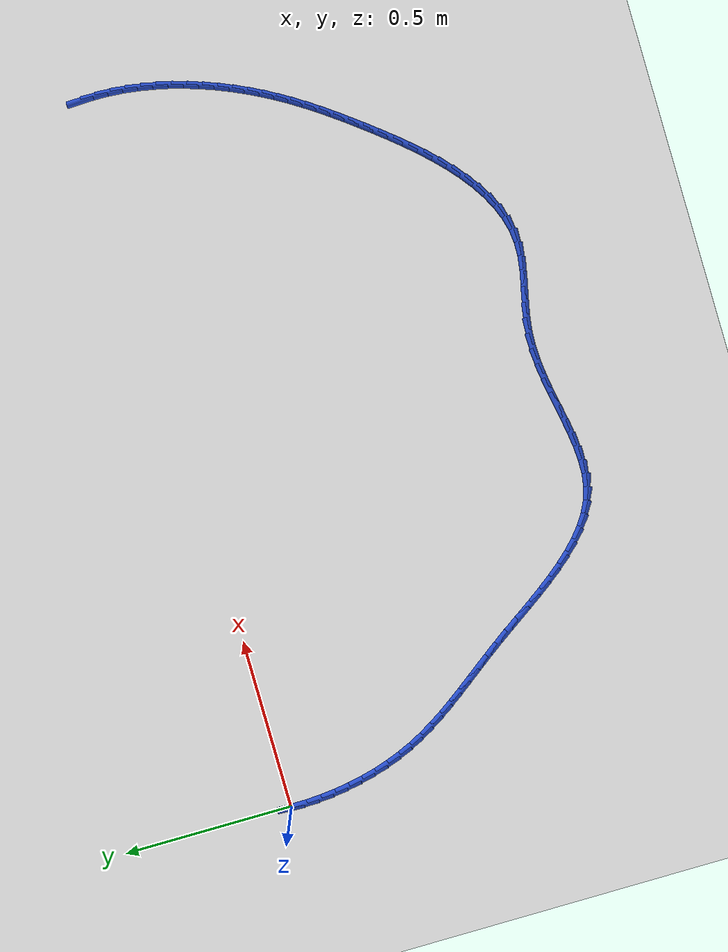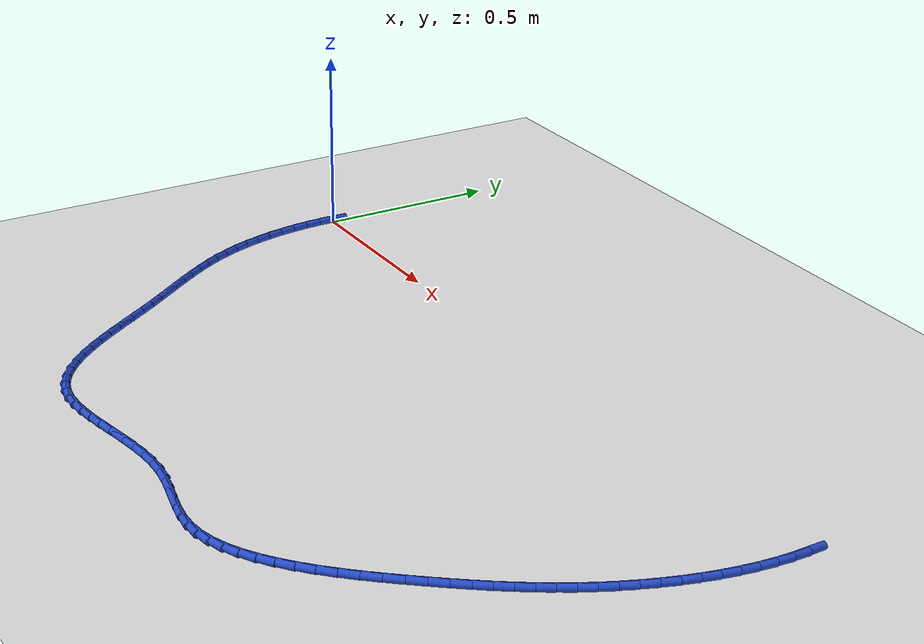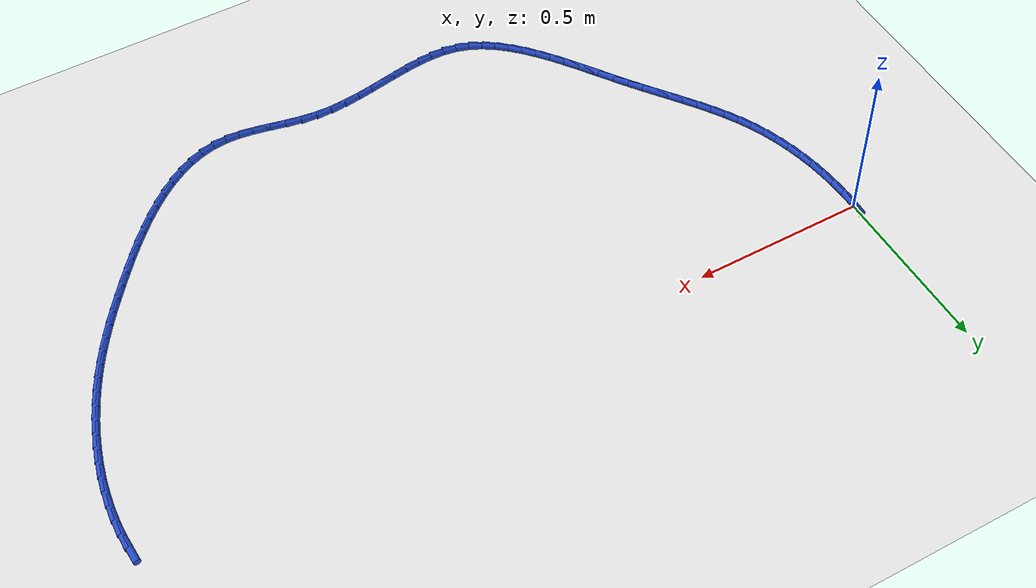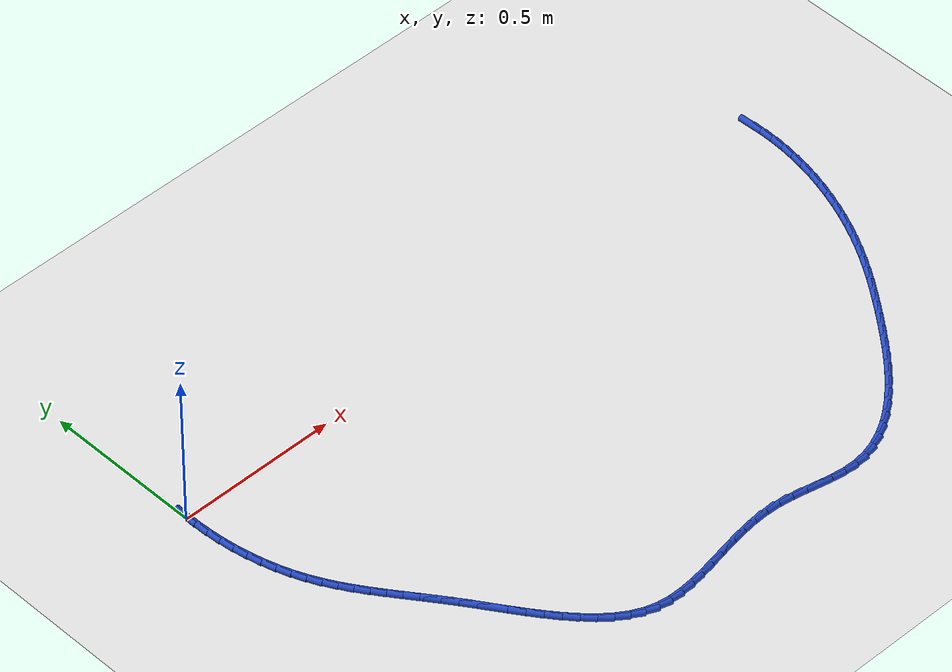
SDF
<sdf version="1.6">
 <world name="default">
  <model name="ground_plane">
   <static>1</static>
   <link name="link">
    <collision name="collision">
     <geometry><plane><normal>0 0 1</normal><size>100 100</size></plane></geometry>
     <surface><friction><ode><mu>100</mu><mu2>50</mu2></ode></friction></surface>
    </collision>
    <visual name="visual">
     <cast_shadows>0</cast_shadows>
     <geometry><plane><normal>0 0 1</normal><size>100 100</size></plane></geometry>
     <material>
      <script><uri>file://media/materials/scripts/gazebo.material</uri><name>Gazebo/WhiteGlow</name></script>
     </material>
    </visual>
   </link>
  </model>
  <model name="line">
   <link name="link_0">
    <pose>3.9898639947466563e-17 2.7755575615628914e-17 0.01 0 1.57 1.5283468277416203</pose>
    <collision name="collision">
     <geometry><cylinder><radius>0.01</radius><length>0.08</length></cylinder></geometry>
    </collision>
    <visual name="visual">
     <material>
      <script><name>Gazebo/Blue</name><uri>file://media/materials/scripts/gazebo.material</uri></script>
     </material>
     <geometry><cylinder><radius>0.01</radius><length>0.08</length></cylinder></geometry>
    </visual>
   </link>
   <link name="link_81">
    <pose>2.1385762341780024 0.02241132161755945 0.01 0 1.57 -1.5367360990285168</pose>
    <collision name="collision">
     <geometry><cylinder><radius>0.01</radius><length>0.08</length></cylinder></geometry>
    </collision>
    <visual name="visual">
     <material>
      <script><name>Gazebo/Blue</name><uri>file://media/materials/scripts/gazebo.material</uri></script>
     </material>
     <geometry><cylinder><radius>0.01</radius><length>0.08</length></cylinder></geometry>
    </visual>
   </link>
   <link name="link_82">
    <pose>2.140056562389448 -0.02103394641865927 0.01 0 1.57 1.5454995120149058</pose>
    <collision name="collision">
     <geometry><cylinder><radius>0.01</radius><length>0.08</length></cylinder></geometry>
    </collision>
    <visual name="visual">
     <material>
      <script><name>Gazebo/Blue</name><uri>file://media/materials/scripts/gazebo.material</uri></script>
     </material>
     <geometry><cylinder><radius>0.01</radius><length>0.08</length></cylinder></geometry>
    </visual>
   </link>
   <link name="link_83">
    <pose>2.138948853689419 -0.06481307097114308 0.01 0 1.57 1.490041009162373</pose>
    <collision name="collision">
     <geometry><cylinder><radius>0.01</radius><length>0.08</length></cylinder></geometry>
    </collision>
    <visual name="visual">
     <material>
      <script><name>Gazebo/Blue</name><uri>file://media/materials/scripts/gazebo.material</uri></script>
     </material>
     <geometry><cylinder><radius>0.01</radius><length>0.08</length></cylinder></geometry>
    </visual>
   </link>
   <link name="link_84">
    <pose>2.1353911505092515 -0.10877260403158467 0.01 0 1.57 1.4381378140270304</pose>
    <collision name="collision">
     <geometry><cylinder><radius>0.01</radius><length>0.08</length></cylinder></geometry>
    </collision>
    <visual name="visual">
     <material>
      <script><name>Gazebo/Blue</name><uri>file://media/materials/scripts/gazebo.material</uri></script>
     </material>
     <geometry><cylinder><radius>0.01</radius><length>0.08</length></cylinder></geometry>
    </visual>
   </link>
   <link name="link_85">
    <pose>2.129521495280283 -0.15275909759167597 0.01 0 1.57 1.3894200010257964</pose>
    <collision name="collision">
     <geometry><cylinder><radius>0.01</radius><length>0.08</length></cylinder></geometry>
    </collision>
    <visual name="visual">
     <material>
      <script><name>Gazebo/Blue</name><uri>file://media/materials/scripts/gazebo.material</uri></script>
     </material>
     <geometry><cylinder><radius>0.01</radius><length>0.08</length></cylinder></geometry>
    </visual>
   </link>
   <link name="link_86">
    <pose>2.12147793043385 -0.1966191036431089 0.01 0 1.57 1.343507507257233</pose>
    <collision name="collision">
     <geometry><cylinder><radius>0.01</radius><length>0.08</length></cylinder></geometry>
    </collision>
    <visual name="visual">
     <material>
      <script><name>Gazebo/Blue</name><uri>file://media/materials/scripts/gazebo.material</uri></script>
     </material>
     <geometry><cylinder><radius>0.01</radius><length>0.08</length></cylinder></geometry>
    </visual>
   </link>
   <link name="link_87">
    <pose>2.111398498401288 -0.24019917417757602 0.01 0 1.57 1.3000201977026942</pose>
    <collision name="collision">
     <geometry><cylinder><radius>0.01</radius><length>0.08</length></cylinder></geometry>
    </collision>
    <visual name="visual">
     <material>
      <script><name>Gazebo/Blue</name><uri>file://media/materials/scripts/gazebo.material</uri></script>
     </material>
     <geometry><cylinder><radius>0.01</radius><length>0.08</length></cylinder></geometry>
    </visual>
   </link>
   <link name="link_88">
    <pose>2.099421241613934 -0.28334586118676774 0.01 0 1.57 1.2585828224933822</pose>
    <collision name="collision">
     <geometry><cylinder><radius>0.01</radius><length>0.08</length></cylinder></geometry>
    </collision>
    <visual name="visual">
     <material>
      <script><name>Gazebo/Blue</name><uri>file://media/materials/scripts/gazebo.material</uri></script>
     </material>
     <geometry><cylinder><radius>0.01</radius><length>0.08</length></cylinder></geometry>
    </visual>
   </link>
   <link name="link_89">
    <pose>2.085684202503125 -0.325905716662377 0.01 0 1.57 1.2188260554733037</pose>
    <collision name="collision">
     <geometry><cylinder><radius>0.01</radius><length>0.08</length></cylinder></geometry>
    </collision>
    <visual name="visual">
     <material>
      <script><name>Gazebo/Blue</name><uri>file://media/materials/scripts/gazebo.material</uri></script>
     </material>
     <geometry><cylinder><radius>0.01</radius><length>0.08</length></cylinder></geometry>
    </visual>
   </link>
   <link name="link_90">
    <pose>2.070325423500197 -0.3677252925960953 0.01 0 1.57 1.1803845038735719</pose>
    <collision name="collision">
     <geometry><cylinder><radius>0.01</radius><length>0.08</length></cylinder></geometry>
    </collision>
    <visual name="visual">
     <material>
      <script><name>Gazebo/Blue</name><uri>file://media/materials/scripts/gazebo.material</uri></script>
     </material>
     <geometry><cylinder><radius>0.01</radius><length>0.08</length></cylinder></geometry>
    </visual>
   </link>
   <link name="link_91">
    <pose>2.053482947036486 -0.4086511409796147 0.01 0 1.57 1.1428922585203218</pose>
    <collision name="collision">
     <geometry><cylinder><radius>0.01</radius><length>0.08</length></cylinder></geometry>
    </collision>
    <visual name="visual">
     <material>
      <script><name>Gazebo/Blue</name><uri>file://media/materials/scripts/gazebo.material</uri></script>
     </material>
     <geometry><cylinder><radius>0.01</radius><length>0.08</length></cylinder></geometry>
    </visual>
   </link>
   <link name="link_92">
    <pose>2.035294815543329 -0.448529813804628 0.01 0 1.57 1.1060596783390448</pose>
    <collision name="collision">
     <geometry><cylinder><radius>0.01</radius><length>0.08</length></cylinder></geometry>
    </collision>
    <visual name="visual">
     <material>
      <script><name>Gazebo/Blue</name><uri>file://media/materials/scripts/gazebo.material</uri></script>
     </material>
     <geometry><cylinder><radius>0.01</radius><length>0.08</length></cylinder></geometry>
    </visual>
   </link>
   <link name="link_93">
    <pose>2.015889456905921 -0.48723509468058 0.01 0 1.57 1.0705007789508294</pose>
    <collision name="collision">
     <geometry><cylinder><radius>0.01</radius><length>0.08</length></cylinder></geometry>
    </collision>
    <visual name="visual">
     <material>
      <script><name>Gazebo/Blue</name><uri>file://media/materials/scripts/gazebo.material</uri></script>
     </material>
     <geometry><cylinder><radius>0.01</radius><length>0.08</length></cylinder></geometry>
    </visual>
   </link>
   <link name="link_94">
    <pose>1.9953132620136749 -0.524873123490219 0.01 0 1.57 1.037089655518106</pose>
    <collision name="collision">
     <geometry><cylinder><radius>0.01</radius><length>0.08</length></cylinder></geometry>
    </collision>
    <visual name="visual">
     <material>
      <script><name>Gazebo/Blue</name><uri>file://media/materials/scripts/gazebo.material</uri></script>
     </material>
     <geometry><cylinder><radius>0.01</radius><length>0.08</length></cylinder></geometry>
    </visual>
   </link>
   <link name="link_95">
    <pose>1.9735710687811283 -0.5616677320709373 0.01 0 1.57 1.0063798327476379</pose>
    <collision name="collision">
     <geometry><cylinder><radius>0.01</radius><length>0.08</length></cylinder></geometry>
    </collision>
    <visual name="visual">
     <material>
      <script><name>Gazebo/Blue</name><uri>file://media/materials/scripts/gazebo.material</uri></script>
     </material>
     <geometry><cylinder><radius>0.01</radius><length>0.08</length></cylinder></geometry>
    </visual>
   </link>
   <link name="link_96">
    <pose>1.9506673917016166 -0.5978436682973808 0.01 0 1.57 0.9788191739992435</pose>
    <collision name="collision">
     <geometry><cylinder><radius>0.01</radius><length>0.08</length></cylinder></geometry>
    </collision>
    <visual name="visual">
     <material>
      <script><name>Gazebo/Blue</name><uri>file://media/materials/scripts/gazebo.material</uri></script>
     </material>
     <geometry><cylinder><radius>0.01</radius><length>0.08</length></cylinder></geometry>
    </visual>
   </link>
   <link name="link_97">
    <pose>1.9266067452684816 -0.6336256800441937 0.01 0 1.57 0.9547360909347792</pose>
    <collision name="collision">
     <geometry><cylinder><radius>0.01</radius><length>0.08</length></cylinder></geometry>
    </collision>
    <visual name="visual">
     <material>
      <script><name>Gazebo/Blue</name><uri>file://media/materials/scripts/gazebo.material</uri></script>
     </material>
     <geometry><cylinder><radius>0.01</radius><length>0.08</length></cylinder></geometry>
    </visual>
   </link>
   <link name="link_98">
    <pose>1.9013936439750605 -0.6692385151860223 0.01 0 1.57 0.934334583449211</pose>
    <collision name="collision">
     <geometry><cylinder><radius>0.01</radius><length>0.08</length></cylinder></geometry>
    </collision>
    <visual name="visual">
     <material>
      <script><name>Gazebo/Blue</name><uri>file://media/materials/scripts/gazebo.material</uri></script>
     </material>
     <geometry><cylinder><radius>0.01</radius><length>0.08</length></cylinder></geometry>
    </visual>
   </link>
   <link name="link_99">
    <pose>1.8750326023146917 -0.7049069215975119 0.01 0 1.57 0.9176993403220279</pose>
    <collision name="collision">
     <geometry><cylinder><radius>0.01</radius><length>0.08</length></cylinder></geometry>
    </collision>
    <visual name="visual">
     <material>
      <script><name>Gazebo/Blue</name><uri>file://media/materials/scripts/gazebo.material</uri></script>
     </material>
     <geometry><cylinder><radius>0.01</radius><length>0.08</length></cylinder></geometry>
    </visual>
   </link>
   <link name="link_100">
    <pose>1.8475281347807133 -0.740855647153308 0.01 0 1.57 0.9044798266328412</pose>
    <collision name="collision">
     <geometry><cylinder><radius>0.01</radius><length>0.08</length></cylinder></geometry>
    </collision>
    <visual name="visual">
     <material>
      <script><name>Gazebo/Blue</name><uri>file://media/materials/scripts/gazebo.material</uri></script>
     </material>
     <geometry><cylinder><radius>0.01</radius><length>0.08</length></cylinder></geometry>
    </visual>
   </link>
   <link name="link_101">
    <pose>1.8188855009833285 -0.7772838616205846 0.01 0 1.57 0.8894356543483096</pose>
    <collision name="collision">
     <geometry><cylinder><radius>0.01</radius><length>0.08</length></cylinder></geometry>
    </collision>
    <visual name="visual">
     <material>
      <script><name>Gazebo/Blue</name><uri>file://media/materials/scripts/gazebo.material</uri></script>
     </material>
     <geometry><cylinder><radius>0.01</radius><length>0.08</length></cylinder></geometry>
    </visual>
   </link>
   <link name="link_102">
    <pose>1.7891216964506942 -0.8139878683373162 0.01 0 1.57 0.8683506349623945</pose>
    <collision name="collision">
     <geometry><cylinder><radius>0.01</radius><length>0.08</length></cylinder></geometry>
    </collision>
    <visual name="visual">
     <material>
      <script><name>Gazebo/Blue</name><uri>file://media/materials/scripts/gazebo.material</uri></script>
     </material>
     <geometry><cylinder><radius>0.01</radius><length>0.08</length></cylinder></geometry>
    </visual>
   </link>
   <link name="link_103">
    <pose>1.7582630608726735 -0.8504432075723085 0.01 0 1.57 0.8407622943882539</pose>
    <collision name="collision">
     <geometry><cylinder><radius>0.01</radius><length>0.08</length></cylinder></geometry>
    </collision>
    <visual name="visual">
     <material>
      <script><name>Gazebo/Blue</name><uri>file://media/materials/scripts/gazebo.material</uri></script>
     </material>
     <geometry><cylinder><radius>0.01</radius><length>0.08</length></cylinder></geometry>
    </visual>
   </link>
   <link name="link_104">
    <pose>1.7263361929028167 -0.8861165299808624 0.01 0 1.57 0.806032804837281</pose>
    <collision name="collision">
     <geometry><cylinder><radius>0.01</radius><length>0.08</length></cylinder></geometry>
    </collision>
    <visual name="visual">
     <material>
      <script><name>Gazebo/Blue</name><uri>file://media/materials/scripts/gazebo.material</uri></script>
     </material>
     <geometry><cylinder><radius>0.01</radius><length>0.08</length></cylinder></geometry>
    </visual>
   </link>
   <link name="link_105">
    <pose>1.6933676911946722 -0.9204744862182785 0.01 0 1.57 0.7632295218565668</pose>
    <collision name="collision">
     <geometry><cylinder><radius>0.01</radius><length>0.08</length></cylinder></geometry>
    </collision>
    <visual name="visual">
     <material>
      <script><name>Gazebo/Blue</name><uri>file://media/materials/scripts/gazebo.material</uri></script>
     </material>
     <geometry><cylinder><radius>0.01</radius><length>0.08</length></cylinder></geometry>
    </visual>
   </link>
   <link name="link_106">
    <pose>1.6593841544017898 -0.9529837269398588 0.01 0 1.57 0.7111132831733754</pose>
    <collision name="collision">
     <geometry><cylinder><radius>0.01</radius><length>0.08</length></cylinder></geometry>
    </collision>
    <visual name="visual">
     <material>
      <script><name>Gazebo/Blue</name><uri>file://media/materials/scripts/gazebo.material</uri></script>
     </material>
     <geometry><cylinder><radius>0.01</radius><length>0.08</length></cylinder></geometry>
    </visual>
   </link>
   <link name="link_107">
    <pose>1.6244121811777181 -0.9831109028009021 0.01 0 1.57 0.6481406067817213</pose>
    <collision name="collision">
     <geometry><cylinder><radius>0.01</radius><length>0.08</length></cylinder></geometry>
    </collision>
    <visual name="visual">
     <material>
      <script><name>Gazebo/Blue</name><uri>file://media/materials/scripts/gazebo.material</uri></script>
     </material>
     <geometry><cylinder><radius>0.01</radius><length>0.08</length></cylinder></geometry>
    </visual>
   </link>
   <link name="link_108">
    <pose>1.5884783701760066 -1.01032266445671 0.01 0 1.57 0.5725162226361502</pose>
    <collision name="collision">
     <geometry><cylinder><radius>0.01</radius><length>0.08</length></cylinder></geometry>
    </collision>
    <visual name="visual">
     <material>
      <script><name>Gazebo/Blue</name><uri>file://media/materials/scripts/gazebo.material</uri></script>
     </material>
     <geometry><cylinder><radius>0.01</radius><length>0.08</length></cylinder></geometry>
    </visual>
   </link>
   <link name="link_109">
    <pose>1.551609320050204 -1.0340856625625834 0.01 0 1.57 0.482358973284678</pose>
    <collision name="collision">
     <geometry><cylinder><radius>0.01</radius><length>0.08</length></cylinder></geometry>
    </collision>
    <visual name="visual">
     <material>
      <script><name>Gazebo/Blue</name><uri>file://media/materials/scripts/gazebo.material</uri></script>
     </material>
     <geometry><cylinder><radius>0.01</radius><length>0.08</length></cylinder></geometry>
    </visual>
   </link>
   <link name="link_110">
    <pose>1.5138316294538599 -1.0538665477738232 0.01 0 1.57 0.37607289792473114</pose>
    <collision name="collision">
     <geometry><cylinder><radius>0.01</radius><length>0.08</length></cylinder></geometry>
    </collision>
    <visual name="visual">
     <material>
      <script><name>Gazebo/Blue</name><uri>file://media/materials/scripts/gazebo.material</uri></script>
     </material>
     <geometry><cylinder><radius>0.01</radius><length>0.08</length></cylinder></geometry>
    </visual>
   </link>
   <link name="link_111">
    <pose>1.4751718970405223 -1.0691319707457299 0.01 0 1.57 0.2530085092322819</pose>
    <collision name="collision">
     <geometry><cylinder><radius>0.01</radius><length>0.08</length></cylinder></geometry>
    </collision>
    <visual name="visual">
     <material>
      <script><name>Gazebo/Blue</name><uri>file://media/materials/scripts/gazebo.material</uri></script>
     </material>
     <geometry><cylinder><radius>0.01</radius><length>0.08</length></cylinder></geometry>
    </visual>
   </link>
   <link name="link_112">
    <pose>1.435656721463742 -1.0793485821336042 0.01 0 1.57 0.11437197226093442</pose>
    <collision name="collision">
     <geometry><cylinder><radius>0.01</radius><length>0.08</length></cylinder></geometry>
    </collision>
    <visual name="visual">
     <material>
      <script><name>Gazebo/Blue</name><uri>file://media/materials/scripts/gazebo.material</uri></script>
     </material>
     <geometry><cylinder><radius>0.01</radius><length>0.08</length></cylinder></geometry>
    </visual>
   </link>
   <link name="link_113">
    <pose>1.3953127013770672 -1.083983032592747 0.01 0 1.57 -0.02922576626225455</pose>
    <collision name="collision">
     <geometry><cylinder><radius>0.01</radius><length>0.08</length></cylinder></geometry>
    </collision>
    <visual name="visual">
     <material>
      <script><name>Gazebo/Blue</name><uri>file://media/materials/scripts/gazebo.material</uri></script>
     </material>
     <geometry><cylinder><radius>0.01</radius><length>0.08</length></cylinder></geometry>
    </visual>
   </link>
   <link name="link_114">
    <pose>1.3541679296325253 -1.0827802026274254 0.01 0 1.57 -0.13690342467669944</pose>
    <collision name="collision">
     <geometry><cylinder><radius>0.01</radius><length>0.08</length></cylinder></geometry>
    </collision>
    <visual name="visual">
     <material>
      <script><name>Gazebo/Blue</name><uri>file://media/materials/scripts/gazebo.material</uri></script>
     </material>
     <geometry><cylinder><radius>0.01</radius><length>0.08</length></cylinder></geometry>
    </visual>
   </link>
   <link name="link_115">
    <pose>1.3122586706050459 -1.0770065654998742 0.01 0 1.57 -0.19815099363750627</pose>
    <collision name="collision">
     <geometry><cylinder><radius>0.01</radius><length>0.08</length></cylinder></geometry>
    </collision>
    <visual name="visual">
     <material>
      <script><name>Gazebo/Blue</name><uri>file://media/materials/scripts/gazebo.material</uri></script>
     </material>
     <geometry><cylinder><radius>0.01</radius><length>0.08</length></cylinder></geometry>
    </visual>
   </link>
   <link name="link_116">
    <pose>1.2696239679964256 -1.0684461239075382 0.01 0 1.57 -0.21725854134529035</pose>
    <collision name="collision">
     <geometry><cylinder><radius>0.01</radius><length>0.08</length></cylinder></geometry>
    </collision>
    <visual name="visual">
     <material>
      <script><name>Gazebo/Blue</name><uri>file://media/materials/scripts/gazebo.material</uri></script>
     </material>
     <geometry><cylinder><radius>0.01</radius><length>0.08</length></cylinder></geometry>
    </visual>
   </link>
   <link name="link_117">
    <pose>1.2263028678162993 -1.0588833102827018 0.01 0 1.57 -0.19711262413635403</pose>
    <collision name="collision">
     <geometry><cylinder><radius>0.01</radius><length>0.08</length></cylinder></geometry>
    </collision>
    <visual name="visual">
     <material>
      <script><name>Gazebo/Blue</name><uri>file://media/materials/scripts/gazebo.material</uri></script>
     </material>
     <geometry><cylinder><radius>0.01</radius><length>0.08</length></cylinder></geometry>
    </visual>
   </link>
   <link name="link_118">
    <pose>1.182334416074301 -1.0501025570576494 0.01 0 1.57 -0.1385131578281251</pose>
    <collision name="collision">
     <geometry><cylinder><radius>0.01</radius><length>0.08</length></cylinder></geometry>
    </collision>
    <visual name="visual">
     <material>
      <script><name>Gazebo/Blue</name><uri>file://media/materials/scripts/gazebo.material</uri></script>
     </material>
     <geometry><cylinder><radius>0.01</radius><length>0.08</length></cylinder></geometry>
    </visual>
   </link>
   <link name="link_119">
    <pose>1.1377576587800642 -1.0438882966646648 0.01 0 1.57 -0.04579712752888623</pose>
    <collision name="collision">
     <geometry><cylinder><radius>0.01</radius><length>0.08</length></cylinder></geometry>
    </collision>
    <visual name="visual">
     <material>
      <script><name>Gazebo/Blue</name><uri>file://media/materials/scripts/gazebo.material</uri></script>
     </material>
     <geometry><cylinder><radius>0.01</radius><length>0.08</length></cylinder></geometry>
    </visual>
   </link>
   <link name="link_120">
    <pose>1.0926255640150542 -1.0418199301147644 0.01 0 1.57 0.04286659156641538</pose>
    <collision name="collision">
     <geometry><cylinder><radius>0.01</radius><length>0.08</length></cylinder></geometry>
    </collision>
    <visual name="visual">
     <material>
      <script><name>Gazebo/Blue</name><uri>file://media/materials/scripts/gazebo.material</uri></script>
     </material>
     <geometry><cylinder><radius>0.01</radius><length>0.08</length></cylinder></geometry>
    </visual>
   </link>
   <link name="link_121">
    <pose>1.0471068390325482 -1.043772358745349 0.01 0 1.57 0.10909606365564191</pose>
    <collision name="collision">
     <geometry><cylinder><radius>0.01</radius><length>0.08</length></cylinder></geometry>
    </collision>
    <visual name="visual">
     <material>
      <script><name>Gazebo/Blue</name><uri>file://media/materials/scripts/gazebo.material</uri></script>
     </material>
     <geometry><cylinder><radius>0.01</radius><length>0.08</length></cylinder></geometry>
    </visual>
   </link>
   <link name="link_122">
    <pose>1.0014275568383504 -1.0487756540498963 0.01 0 1.57 0.15394978121453762</pose>
    <collision name="collision">
     <geometry><cylinder><radius>0.01</radius><length>0.08</length></cylinder></geometry>
    </collision>
    <visual name="visual">
     <material>
      <script><name>Gazebo/Blue</name><uri>file://media/materials/scripts/gazebo.material</uri></script>
     </material>
     <geometry><cylinder><radius>0.01</radius><length>0.08</length></cylinder></geometry>
    </visual>
   </link>
   <link name="link_123">
    <pose>0.9558142019304738 -1.0558538274444929 0.01 0 1.57 0.17850524806187737</pose>
    <collision name="collision">
     <geometry><cylinder><radius>0.01</radius><length>0.08</length></cylinder></geometry>
    </collision>
    <visual name="visual">
     <material>
      <script><name>Gazebo/Blue</name><uri>file://media/materials/scripts/gazebo.material</uri></script>
     </material>
     <geometry><cylinder><radius>0.01</radius><length>0.08</length></cylinder></geometry>
    </visual>
   </link>
   <link name="link_124">
    <pose>0.9104932588069325 -1.0640308903452247 0.01 0 1.57 0.18318178289636622</pose>
    <collision name="collision">
     <geometry><cylinder><radius>0.01</radius><length>0.08</length></cylinder></geometry>
    </collision>
    <visual name="visual">
     <material>
      <script><name>Gazebo/Blue</name><uri>file://media/materials/scripts/gazebo.material</uri></script>
     </material>
     <geometry><cylinder><radius>0.01</radius><length>0.08</length></cylinder></geometry>
    </visual>
   </link>
   <link name="link_125">
    <pose>0.86569121196574 -1.0723308541681773 0.01 0 1.57 0.16744676415221071</pose>
    <collision name="collision">
     <geometry><cylinder><radius>0.01</radius><length>0.08</length></cylinder></geometry>
    </collision>
    <visual name="visual">
     <material>
      <script><name>Gazebo/Blue</name><uri>file://media/materials/scripts/gazebo.material</uri></script>
     </material>
     <geometry><cylinder><radius>0.01</radius><length>0.08</length></cylinder></geometry>
    </visual>
   </link>
   <link name="link_126">
    <pose>0.8216345459049097 -1.0797777303294378 0.01 0 1.57 0.12965788135434847</pose>
    <collision name="collision">
     <geometry><cylinder><radius>0.01</radius><length>0.08</length></cylinder></geometry>
    </collision>
    <visual name="visual">
     <material>
      <script><name>Gazebo/Blue</name><uri>file://media/materials/scripts/gazebo.material</uri></script>
     </material>
     <geometry><cylinder><radius>0.01</radius><length>0.08</length></cylinder></geometry>
    </visual>
   </link>
   <link name="link_127">
    <pose>0.7785497451224563 -1.0853955302450913 0.01 0 1.57 0.06705076665568271</pose>
    <collision name="collision">
     <geometry><cylinder><radius>0.01</radius><length>0.08</length></cylinder></geometry>
    </collision>
    <visual name="visual">
     <material>
      <script><name>Gazebo/Blue</name><uri>file://media/materials/scripts/gazebo.material</uri></script>
     </material>
     <geometry><cylinder><radius>0.01</radius><length>0.08</length></cylinder></geometry>
    </visual>
   </link>
   <link name="link_128">
    <pose>0.7366632941163939 -1.0882082653312246 0.01 0 1.57 -0.023927208238121087</pose>
    <collision name="collision">
     <geometry><cylinder><radius>0.01</radius><length>0.08</length></cylinder></geometry>
    </collision>
    <visual name="visual">
     <material>
      <script><name>Gazebo/Blue</name><uri>file://media/materials/scripts/gazebo.material</uri></script>
     </material>
     <geometry><cylinder><radius>0.01</radius><length>0.08</length></cylinder></geometry>
    </visual>
   </link>
   <link name="link_129">
    <pose>0.6962016773847349 -1.0872399470039222 0.01 0 1.57 -0.14646528519270366</pose>
    <collision name="collision">
     <geometry><cylinder><radius>0.01</radius><length>0.08</length></cylinder></geometry>
    </collision>
    <visual name="visual">
     <material>
      <script><name>Gazebo/Blue</name><uri>file://media/materials/scripts/gazebo.material</uri></script>
     </material>
     <geometry><cylinder><radius>0.01</radius><length>0.08</length></cylinder></geometry>
    </visual>
   </link>
   <link name="link_130">
    <pose>0.6573913794254941 -1.0815145866792717 0.01 0 1.57 -0.2989712120661296</pose>
    <collision name="collision">
     <geometry><cylinder><radius>0.01</radius><length>0.08</length></cylinder></geometry>
    </collision>
    <visual name="visual">
     <material>
      <script><name>Gazebo/Blue</name><uri>file://media/materials/scripts/gazebo.material</uri></script>
     </material>
     <geometry><cylinder><radius>0.01</radius><length>0.08</length></cylinder></geometry>
    </visual>
   </link>
   <link name="link_131">
    <pose>0.6204410992648136 -1.0701261638770434 0.01 0 1.57 -0.45217458029320334</pose>
    <collision name="collision">
     <geometry><cylinder><radius>0.01</radius><length>0.08</length></cylinder></geometry>
    </collision>
    <visual name="visual">
     <material>
      <script><name>Gazebo/Blue</name><uri>file://media/materials/scripts/gazebo.material</uri></script>
     </material>
     <geometry><cylinder><radius>0.01</radius><length>0.08</length></cylinder></geometry>
    </visual>
   </link>
   <link name="link_132">
    <pose>0.5853300793891812 -1.0530713408838472 0.01 0 1.57 -0.5837557268887612</pose>
    <collision name="collision">
     <geometry><cylinder><radius>0.01</radius><length>0.08</length></cylinder></geometry>
    </collision>
    <visual name="visual">
     <material>
      <script><name>Gazebo/Blue</name><uri>file://media/materials/scripts/gazebo.material</uri></script>
     </material>
     <geometry><cylinder><radius>0.01</radius><length>0.08</length></cylinder></geometry>
    </visual>
   </link>
   <link name="link_133">
    <pose>0.5518779813591549 -1.0309745718634324 0.01 0 1.57 -0.6920425859428436</pose>
    <collision name="collision">
     <geometry><cylinder><radius>0.01</radius><length>0.08</length></cylinder></geometry>
    </collision>
    <visual name="visual">
     <material>
      <script><name>Gazebo/Blue</name><uri>file://media/materials/scripts/gazebo.material</uri></script>
     </material>
     <geometry><cylinder><radius>0.01</radius><length>0.08</length></cylinder></geometry>
    </visual>
   </link>
   <link name="link_134">
    <pose>0.5199012367486506 -1.0044730177574073 0.01 0 1.57 -0.7785770527535949</pose>
    <collision name="collision">
     <geometry><cylinder><radius>0.01</radius><length>0.08</length></cylinder></geometry>
    </collision>
    <visual name="visual">
     <material>
      <script><name>Gazebo/Blue</name><uri>file://media/materials/scripts/gazebo.material</uri></script>
     </material>
     <geometry><cylinder><radius>0.01</radius><length>0.08</length></cylinder></geometry>
    </visual>
   </link>
   <link name="link_135">
    <pose>0.48921627713158505 -0.9742038395073833 0.01 0 1.57 -0.8460274464922944</pose>
    <collision name="collision">
     <geometry><cylinder><radius>0.01</radius><length>0.08</length></cylinder></geometry>
    </collision>
    <visual name="visual">
     <material>
      <script><name>Gazebo/Blue</name><uri>file://media/materials/scripts/gazebo.material</uri></script>
     </material>
     <geometry><cylinder><radius>0.01</radius><length>0.08</length></cylinder></geometry>
    </visual>
   </link>
   <link name="link_136">
    <pose>0.459639534081874 -0.9408041980549696 0.01 0 1.57 -0.8971139655710966</pose>
    <collision name="collision">
     <geometry><cylinder><radius>0.01</radius><length>0.08</length></cylinder></geometry>
    </collision>
    <visual name="visual">
     <material>
      <script><name>Gazebo/Blue</name><uri>file://media/materials/scripts/gazebo.material</uri></script>
     </material>
     <geometry><cylinder><radius>0.01</radius><length>0.08</length></cylinder></geometry>
    </visual>
   </link>
   <link name="link_137">
    <pose>0.43098743917343524 -0.9049112543417779 0.01 0 1.57 -0.9341250803602491</pose>
    <collision name="collision">
     <geometry><cylinder><radius>0.01</radius><length>0.08</length></cylinder></geometry>
    </collision>
    <visual name="visual">
     <material>
      <script><name>Gazebo/Blue</name><uri>file://media/materials/scripts/gazebo.material</uri></script>
     </material>
     <geometry><cylinder><radius>0.01</radius><length>0.08</length></cylinder></geometry>
    </visual>
   </link>
   <link name="link_138">
    <pose>0.4030764239801844 -0.8671621693094175 0.01 0 1.57 -0.9587650643279078</pose>
    <collision name="collision">
     <geometry><cylinder><radius>0.01</radius><length>0.08</length></cylinder></geometry>
    </collision>
    <visual name="visual">
     <material>
      <script><name>Gazebo/Blue</name><uri>file://media/materials/scripts/gazebo.material</uri></script>
     </material>
     <geometry><cylinder><radius>0.01</radius><length>0.08</length></cylinder></geometry>
    </visual>
   </link>
   <link name="link_139">
    <pose>0.3757229200760379 -0.8281941038994989 0.01 0 1.57 -0.972140476639527</pose>
    <collision name="collision">
     <geometry><cylinder><radius>0.01</radius><length>0.08</length></cylinder></geometry>
    </collision>
    <visual name="visual">
     <material>
      <script><name>Gazebo/Blue</name><uri>file://media/materials/scripts/gazebo.material</uri></script>
     </material>
     <geometry><cylinder><radius>0.01</radius><length>0.08</length></cylinder></geometry>
    </visual>
   </link>
   <link name="link_140">
    <pose>0.3487433590349124 -0.7886442190536322 0.01 0 1.57 -0.9747824039818462</pose>
    <collision name="collision">
     <geometry><cylinder><radius>0.01</radius><length>0.08</length></cylinder></geometry>
    </collision>
    <visual name="visual">
     <material>
      <script><name>Gazebo/Blue</name><uri>file://media/materials/scripts/gazebo.material</uri></script>
     </material>
     <geometry><cylinder><radius>0.01</radius><length>0.08</length></cylinder></geometry>
    </visual>
   </link>
   <link name="link_141">
    <pose>0.3219541724307236 -0.7491496757134268 0.01 0 1.57 -0.966656713030123</pose>
    <collision name="collision">
     <geometry><cylinder><radius>0.01</radius><length>0.08</length></cylinder></geometry>
    </collision>
    <visual name="visual">
     <material>
      <script><name>Gazebo/Blue</name><uri>file://media/materials/scripts/gazebo.material</uri></script>
     </material>
     <geometry><cylinder><radius>0.01</radius><length>0.08</length></cylinder></geometry>
    </visual>
   </link>
   <link name="link_142">
    <pose>0.2951717918373892 -0.7103476348204947 0.01 0 1.57 -0.9496889760862077</pose>
    <collision name="collision">
     <geometry><cylinder><radius>0.01</radius><length>0.08</length></cylinder></geometry>
    </collision>
    <visual name="visual">
     <material>
      <script><name>Gazebo/Blue</name><uri>file://media/materials/scripts/gazebo.material</uri></script>
     </material>
     <geometry><cylinder><radius>0.01</radius><length>0.08</length></cylinder></geometry>
    </visual>
   </link>
   <link name="link_143">
    <pose>0.26826969177278914 -0.6727529247553911 0.01 0 1.57 -0.9365566088528425</pose>
    <collision name="collision">
     <geometry><cylinder><radius>0.01</radius><length>0.08</length></cylinder></geometry>
    </collision>
    <visual name="visual">
     <material>
      <script><name>Gazebo/Blue</name><uri>file://media/materials/scripts/gazebo.material</uri></script>
     </material>
     <geometry><cylinder><radius>0.01</radius><length>0.08</length></cylinder></geometry>
    </visual>
   </link>
   <link name="link_144">
    <pose>0.24141599008849057 -0.6362484907751431 0.01 0 1.57 -0.9319435686961882</pose>
    <collision name="collision">
     <geometry><cylinder><radius>0.01</radius><length>0.08</length></cylinder></geometry>
    </collision>
    <visual name="visual">
     <material>
      <script><name>Gazebo/Blue</name><uri>file://media/materials/scripts/gazebo.material</uri></script>
     </material>
     <geometry><cylinder><radius>0.01</radius><length>0.08</length></cylinder></geometry>
    </visual>
   </link>
   <link name="link_145">
    <pose>0.21487365815322115 -0.6005138581715237 0.01 0 1.57 -0.936354410888569</pose>
    <collision name="collision">
     <geometry><cylinder><radius>0.01</radius><length>0.08</length></cylinder></geometry>
    </collision>
    <visual name="visual">
     <material>
      <script><name>Gazebo/Blue</name><uri>file://media/materials/scripts/gazebo.material</uri></script>
     </material>
     <geometry><cylinder><radius>0.01</radius><length>0.08</length></cylinder></geometry>
    </visual>
   </link>
   <link name="link_146">
    <pose>0.1889057128357319 -0.565228454658339 0.01 0 1.57 -0.9501969839485154</pose>
    <collision name="collision">
     <geometry><cylinder><radius>0.01</radius><length>0.08</length></cylinder></geometry>
    </collision>
    <visual name="visual">
     <material>
      <script><name>Gazebo/Blue</name><uri>file://media/materials/scripts/gazebo.material</uri></script>
     </material>
     <geometry><cylinder><radius>0.01</radius><length>0.08</length></cylinder></geometry>
    </visual>
   </link>
   <link name="link_147">
    <pose>0.16377517100477518 -0.5300717079493966 0.01 0 1.57 -0.9737544903194051</pose>
    <collision name="collision">
     <geometry><cylinder><radius>0.01</radius><length>0.08</length></cylinder></geometry>
    </collision>
    <visual name="visual">
     <material>
      <script><name>Gazebo/Blue</name><uri>file://media/materials/scripts/gazebo.material</uri></script>
     </material>
     <geometry><cylinder><radius>0.01</radius><length>0.08</length></cylinder></geometry>
    </visual>
   </link>
   <link name="link_148">
    <pose>0.13974504952910188 -0.494723045758503 0.01 0 1.57 -1.0071305640242507</pose>
    <collision name="collision">
     <geometry><cylinder><radius>0.01</radius><length>0.08</length></cylinder></geometry>
    </collision>
    <visual name="visual">
     <material>
      <script><name>Gazebo/Blue</name><uri>file://media/materials/scripts/gazebo.material</uri></script>
     </material>
     <geometry><cylinder><radius>0.01</radius><length>0.08</length></cylinder></geometry>
    </visual>
   </link>
   <link name="link_149">
    <pose>0.11707836527746356 -0.45886189579946435 0.01 0 1.57 -1.0501700351057892</pose>
    <collision name="collision">
     <geometry><cylinder><radius>0.01</radius><length>0.08</length></cylinder></geometry>
    </collision>
    <visual name="visual">
     <material>
      <script><name>Gazebo/Blue</name><uri>file://media/materials/scripts/gazebo.material</uri></script>
     </material>
     <geometry><cylinder><radius>0.01</radius><length>0.08</length></cylinder></geometry>
    </visual>
   </link>
   <link name="link_150">
    <pose>0.09603813511861155 -0.4221676857860876 0.01 0 1.57 -1.102365485422863</pose>
    <collision name="collision">
     <geometry><cylinder><radius>0.01</radius><length>0.08</length></cylinder></geometry>
    </collision>
    <visual name="visual">
     <material>
      <script><name>Gazebo/Blue</name><uri>file://media/materials/scripts/gazebo.material</uri></script>
     </material>
     <geometry><cylinder><radius>0.01</radius><length>0.08</length></cylinder></geometry>
    </visual>
   </link>
   <link name="link_151">
    <pose>0.076887375921297 -0.3843198434321785 0.01 0 1.57 -1.161216630564479</pose>
    <collision name="collision">
     <geometry><cylinder><radius>0.01</radius><length>0.08</length></cylinder></geometry>
    </collision>
    <visual name="visual">
     <material>
      <script><name>Gazebo/Blue</name><uri>file://media/materials/scripts/gazebo.material</uri></script>
     </material>
     <geometry><cylinder><radius>0.01</radius><length>0.08</length></cylinder></geometry>
    </visual>
   </link>
   <link name="link_152">
    <pose>0.0598488467542835 -0.34507245999419717 0.01 0 1.57 -1.2189862209661466</pose>
    <collision name="collision">
     <geometry><cylinder><radius>0.01</radius><length>0.08</length></cylinder></geometry>
    </collision>
    <visual name="visual">
     <material>
      <script><name>Gazebo/Blue</name><uri>file://media/materials/scripts/gazebo.material</uri></script>
     </material>
     <geometry><cylinder><radius>0.01</radius><length>0.08</length></cylinder></geometry>
    </visual>
   </link>
   <link name="link_153">
    <pose>0.04496238914289955 -0.30451887208750783 0.01 0 1.57 -1.2739449715595812</pose>
    <collision name="collision">
     <geometry><cylinder><radius>0.01</radius><length>0.08</length></cylinder></geometry>
    </collision>
    <visual name="visual">
     <material>
      <script><name>Gazebo/Blue</name><uri>file://media/materials/scripts/gazebo.material</uri></script>
     </material>
     <geometry><cylinder><radius>0.01</radius><length>0.08</length></cylinder></geometry>
    </visual>
   </link>
   <link name="link_154">
    <pose>0.0322159198345299 -0.2628487178609385 0.01 0 1.57 -1.326496117661075</pose>
    <collision name="collision">
     <geometry><cylinder><radius>0.01</radius><length>0.08</length></cylinder></geometry>
    </collision>
    <visual name="visual">
     <material>
      <script><name>Gazebo/Blue</name><uri>file://media/materials/scripts/gazebo.material</uri></script>
     </material>
     <geometry><cylinder><radius>0.01</radius><length>0.08</length></cylinder></geometry>
    </visual>
   </link>
   <link name="link_155">
    <pose>0.021597352072967174 -0.2202516419612026 0.01 0 1.57 -1.3770449823187432</pose>
    <collision name="collision">
     <geometry><cylinder><radius>0.01</radius><length>0.08</length></cylinder></geometry>
    </collision>
    <visual name="visual">
     <material>
      <script><name>Gazebo/Blue</name><uri>file://media/materials/scripts/gazebo.material</uri></script>
     </material>
     <geometry><cylinder><radius>0.01</radius><length>0.08</length></cylinder></geometry>
    </visual>
   </link>
   <link name="link_156">
    <pose>0.013094599102003873 -0.1769172890350129 0.01 0 1.57 -1.4259934514987012</pose>
    <collision name="collision">
     <geometry><cylinder><radius>0.01</radius><length>0.08</length></cylinder></geometry>
    </collision>
    <visual name="visual">
     <material>
      <script><name>Gazebo/Blue</name><uri>file://media/materials/scripts/gazebo.material</uri></script>
     </material>
     <geometry><cylinder><radius>0.01</radius><length>0.08</length></cylinder></geometry>
    </visual>
   </link>
   <link name="link_157">
    <pose>0.006695574165432967 -0.13303530372908465 0.01 0 1.57 -1.4737381852390594</pose>
    <collision name="collision">
     <geometry><cylinder><radius>0.01</radius><length>0.08</length></cylinder></geometry>
    </collision>
    <visual name="visual">
     <material>
      <script><name>Gazebo/Blue</name><uri>file://media/materials/scripts/gazebo.material</uri></script>
     </material>
     <geometry><cylinder><radius>0.01</radius><length>0.08</length></cylinder></geometry>
    </visual>
   </link>
   <link name="link_158">
    <pose>0.0023881905070469297 -0.08879533069013071 0.01 0 1.57 -1.5206714131311405</pose>
    <collision name="collision">
     <geometry><cylinder><radius>0.01</radius><length>0.08</length></cylinder></geometry>
    </collision>
    <visual name="visual">
     <material>
      <script><name>Gazebo/Blue</name><uri>file://media/materials/scripts/gazebo.material</uri></script>
     </material>
     <geometry><cylinder><radius>0.01</radius><length>0.08</length></cylinder></geometry>
    </visual>
   </link>
   <link name="link_159">
    <pose>0.00016036137063840748 -0.04438701456486471 0.01 0 1.57 -1.5671835433148629</pose>
    <collision name="collision">
     <geometry><cylinder><radius>0.01</radius><length>0.08</length></cylinder></geometry>
    </collision>
    <visual name="visual">
     <material>
      <script><name>Gazebo/Blue</name><uri>file://media/materials/scripts/gazebo.material</uri></script>
     </material>
     <geometry><cylinder><radius>0.01</radius><length>0.08</length></cylinder></geometry>
    </visual>
   </link>
   <link name="link_160">
    <pose>4.5102810375396984e-17 -1.942890293094024e-16 0.01 0 1.57 1.5279256364566964</pose>
    <collision name="collision">
     <geometry><cylinder><radius>0.01</radius><length>0.08</length></cylinder></geometry>
    </collision>
    <visual name="visual">
     <material>
      <script><name>Gazebo/Blue</name><uri>file://media/materials/scripts/gazebo.material</uri></script>
     </material>
     <geometry><cylinder><radius>0.01</radius><length>0.08</length></cylinder></geometry>
    </visual>
   </link>
  </model>
 </world>
</sdf>
